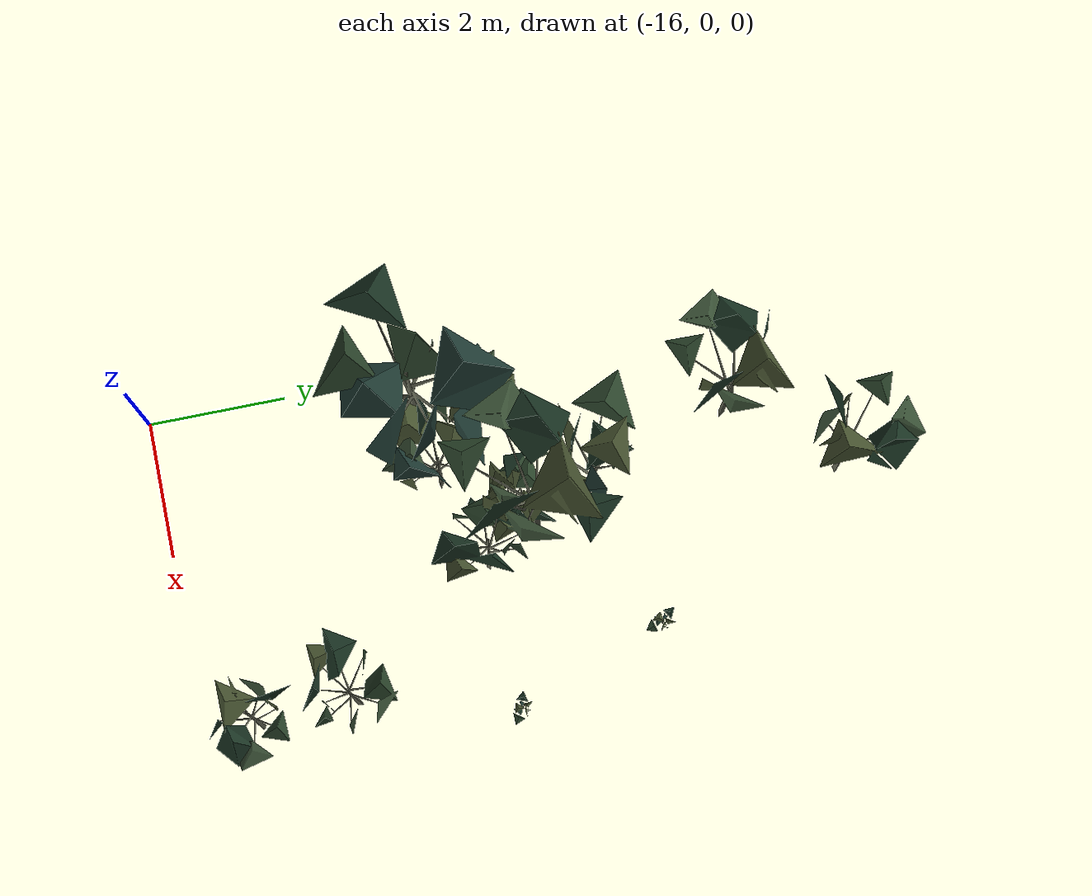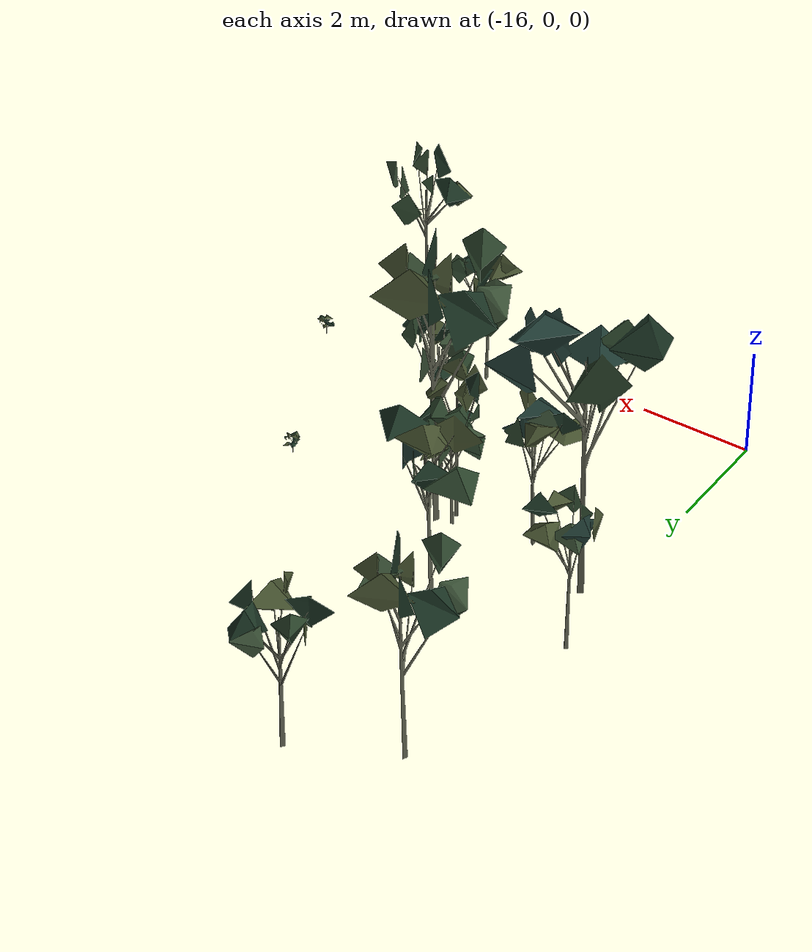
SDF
<sdf version="1.8">
 <model name="blue_mountains">
  <static>true</static>
  <link name="forest_18_20">
   <collision name="tree_75_trunk">
    <pose>-11.33568 0.8718454 1.156128 0 0 3.13535</pose>
    <geometry><cylinder><radius>0.03977862</radius><length>2.115371</length></cylinder></geometry>
   </collision>
   <collision name="plant_75_crown_0">
    <pose>-11.31977 0.8717461 0.09844232 0 0 3.13535</pose>
    <geometry>
     <mesh>
      <uri>model://blue_mountains/meshes/canopy_7_0.dae</uri>
      <scale>0.1591145 0.1591145 0.159047</scale>
     </mesh>
    </geometry>
   </collision>
   <collision name="plant_75_crown_1">
    <pose>-11.31977 0.8717461 0.09844232 0 0 3.13535</pose>
    <geometry>
     <mesh>
      <uri>model://blue_mountains/meshes/canopy_7_1.dae</uri>
      <scale>0.1591145 0.1591145 0.159047</scale>
     </mesh>
    </geometry>
   </collision>
   <collision name="tree_76_trunk">
    <pose>-13.63557 6.041075 1.322435 0 0 0.3849009</pose>
    <geometry><cylinder><radius>0.05684768</radius><length>2.892612</length></cylinder></geometry>
   </collision>
   <collision name="plant_76_crown_0">
    <pose>-13.65664 6.032537 -0.1238706 0 0 0.3849009</pose>
    <geometry>
     <mesh>
      <uri>model://blue_mountains/meshes/canopy_8_0.dae</uri>
      <scale>0.2273907 0.2273907 0.2152363</scale>
     </mesh>
    </geometry>
   </collision>
   <collision name="plant_76_crown_1">
    <pose>-13.65664 6.032537 -0.1238706 0 0 0.3849009</pose>
    <geometry>
     <mesh>
      <uri>model://blue_mountains/meshes/canopy_8_1.dae</uri>
      <scale>0.2273907 0.2273907 0.2152363</scale>
     </mesh>
    </geometry>
   </collision>
   <collision name="tree_149_trunk">
    <pose>-15.33787 4.590311 -0.108752 0 0 -1.71311</pose>
    <geometry><cylinder><radius>0.04133655</radius><length>2.530452</length></cylinder></geometry>
   </collision>
   <collision name="plant_149_crown_0">
    <pose>-15.33553 4.606678 -1.373978 0 0 -1.71311</pose>
    <geometry>
     <mesh>
      <uri>model://blue_mountains/meshes/canopy_1_0.dae</uri>
      <scale>0.1653462 0.1653462 0.1869013</scale>
     </mesh>
    </geometry>
   </collision>
   <collision name="plant_149_crown_1">
    <pose>-15.33553 4.606678 -1.373978 0 0 -1.71311</pose>
    <geometry>
     <mesh>
      <uri>model://blue_mountains/meshes/canopy_1_1.dae</uri>
      <scale>0.1653462 0.1653462 0.1869013</scale>
     </mesh>
    </geometry>
   </collision>
   <collision name="tree_243_trunk">
    <pose>-14.26719 4.022866 1.043729 0 0 0.7645345</pose>
    <geometry><cylinder><radius>0.04388504</radius><length>2.24386</length></cylinder></geometry>
   </collision>
   <collision name="plant_243_crown_0">
    <pose>-14.27986 4.010715 -0.07820058 0 0 0.7645345</pose>
    <geometry>
     <mesh>
      <uri>model://blue_mountains/meshes/canopy_1_0.dae</uri>
      <scale>0.1755401 0.1755401 0.1657333</scale>
     </mesh>
    </geometry>
   </collision>
   <collision name="plant_243_crown_1">
    <pose>-14.27986 4.010715 -0.07820058 0 0 0.7645345</pose>
    <geometry>
     <mesh>
      <uri>model://blue_mountains/meshes/canopy_1_1.dae</uri>
      <scale>0.1755401 0.1755401 0.1657333</scale>
     </mesh>
    </geometry>
   </collision>
   <collision name="tree_263_trunk">
    <pose>-13.38329 4.884163 1.871037 0 0 -0.6052021</pose>
    <geometry><cylinder><radius>0.0360316</radius><length>2.334371</length></cylinder></geometry>
   </collision>
   <collision name="plant_263_crown_0">
    <pose>-13.39514 4.892363 0.7038512 0 0 -0.6052021</pose>
    <geometry>
     <mesh>
      <uri>model://blue_mountains/meshes/canopy_0_0.dae</uri>
      <scale>0.1441264 0.1441264 0.1721586</scale>
     </mesh>
    </geometry>
   </collision>
   <collision name="plant_263_crown_1">
    <pose>-13.39514 4.892363 0.7038512 0 0 -0.6052021</pose>
    <geometry>
     <mesh>
      <uri>model://blue_mountains/meshes/canopy_0_1.dae</uri>
      <scale>0.1441264 0.1441264 0.1721586</scale>
     </mesh>
    </geometry>
   </collision>
   <collision name="tree_272_trunk">
    <pose>-12.7792 4.466906 2.330811 0 0 1.249996</pose>
    <geometry><cylinder><radius>0.03788829</radius><length>2.412556</length></cylinder></geometry>
   </collision>
   <collision name="plant_272_crown_0">
    <pose>-12.78398 4.452524 1.124533 0 0 1.249996</pose>
    <geometry>
     <mesh>
      <uri>model://blue_mountains/meshes/canopy_2_0.dae</uri>
      <scale>0.1515532 0.1515532 0.1775047</scale>
     </mesh>
    </geometry>
   </collision>
   <collision name="plant_272_crown_1">
    <pose>-12.78398 4.452524 1.124533 0 0 1.249996</pose>
    <geometry>
     <mesh>
      <uri>model://blue_mountains/meshes/canopy_2_1.dae</uri>
      <scale>0.1515532 0.1515532 0.1775047</scale>
     </mesh>
    </geometry>
   </collision>
   <collision name="tree_301_trunk">
    <pose>-13.42272 5.085336 1.574898 0 0 1.448694</pose>
    <geometry><cylinder><radius>0.03642906</radius><length>1.798371</length></cylinder></geometry>
   </collision>
   <collision name="plant_301_crown_0">
    <pose>-13.4245 5.070873 0.6757121 0 0 1.448694</pose>
    <geometry>
     <mesh>
      <uri>model://blue_mountains/meshes/canopy_2_0.dae</uri>
      <scale>0.1457162 0.1457162 0.1323158</scale>
     </mesh>
    </geometry>
   </collision>
   <collision name="plant_301_crown_1">
    <pose>-13.4245 5.070873 0.6757121 0 0 1.448694</pose>
    <geometry>
     <mesh>
      <uri>model://blue_mountains/meshes/canopy_2_1.dae</uri>
      <scale>0.1457162 0.1457162 0.1323158</scale>
     </mesh>
    </geometry>
   </collision>
   <collision name="tree_379_trunk">
    <pose>-11.13 2.407401 3.526007 0 0 -0.3767469</pose>
    <geometry><cylinder><radius>0.03762101</radius><length>2.388275</length></cylinder></geometry>
   </collision>
   <collision name="plant_379_crown_0">
    <pose>-11.144 2.412937 2.33187 0 0 -0.3767469</pose>
    <geometry>
     <mesh><uri>model://blue_mountains/meshes/canopy_2_0.dae</uri><scale>0.150484 0.150484 0.1757182</scale></mesh>
    </geometry>
   </collision>
   <collision name="plant_379_crown_1">
    <pose>-11.144 2.412937 2.33187 0 0 -0.3767469</pose>
    <geometry>
     <mesh><uri>model://blue_mountains/meshes/canopy_2_1.dae</uri><scale>0.150484 0.150484 0.1757182</scale></mesh>
    </geometry>
   </collision>
   <collision name="tree_394_trunk">
    <pose>-14.7105 8.342779 0.4646385 0 0 0.3441808</pose>
    <geometry><cylinder><radius>0.05650556</radius><length>3.258937</length></cylinder></geometry>
   </collision>
   <collision name="plant_394_crown_0">
    <pose>-14.73178 8.335153 -1.16483 0 0 0.3441808</pose>
    <geometry>
     <mesh>
      <uri>model://blue_mountains/meshes/canopy_7_0.dae</uri>
      <scale>0.2260223 0.2260223 0.2450275</scale>
     </mesh>
    </geometry>
   </collision>
   <collision name="plant_394_crown_1">
    <pose>-14.73178 8.335153 -1.16483 0 0 0.3441808</pose>
    <geometry>
     <mesh>
      <uri>model://blue_mountains/meshes/canopy_7_1.dae</uri>
      <scale>0.2260223 0.2260223 0.2450275</scale>
     </mesh>
    </geometry>
   </collision>
   <collision name="tree_417_trunk">
    <pose>-13.15352 5.200041 2.825045 0 0 0.2503443</pose>
    <geometry><cylinder><radius>0.06664078</radius><length>4.164946</length></cylinder></geometry>
   </collision>
   <collision name="plant_417_crown_0">
    <pose>-13.17935 5.193438 0.7425723 0 0 0.2503443</pose>
    <geometry>
     <mesh>
      <uri>model://blue_mountains/meshes/canopy_7_0.dae</uri>
      <scale>0.2665631 0.2665631 0.3131471</scale>
     </mesh>
    </geometry>
   </collision>
   <collision name="plant_417_crown_1">
    <pose>-13.17935 5.193438 0.7425723 0 0 0.2503443</pose>
    <geometry>
     <mesh>
      <uri>model://blue_mountains/meshes/canopy_7_1.dae</uri>
      <scale>0.2665631 0.2665631 0.3131471</scale>
     </mesh>
    </geometry>
   </collision>
   <collision name="tree_430_trunk">
    <pose>-13.4532 9.708875 0.7613659 0 0 -1.56741</pose>
    <geometry><cylinder><radius>0.04901569</radius><length>2.539823</length></cylinder></geometry>
   </collision>
   <collision name="plant_430_crown_0">
    <pose>-13.45327 9.728481 -0.5085456 0 0 -1.56741</pose>
    <geometry>
     <mesh><uri>model://blue_mountains/meshes/canopy_7_0.dae</uri><scale>0.1960628 0.1960628 0.19096</scale></mesh>
    </geometry>
   </collision>
   <collision name="plant_430_crown_1">
    <pose>-13.45327 9.728481 -0.5085456 0 0 -1.56741</pose>
    <geometry>
     <mesh><uri>model://blue_mountains/meshes/canopy_7_1.dae</uri><scale>0.1960628 0.1960628 0.19096</scale></mesh>
    </geometry>
   </collision>
   <collision name="tree_448_trunk">
    <pose>-15.12192 3.874882 1.524951 0 0 -0.2266644</pose>
    <geometry><cylinder><radius>0.07146587</radius><length>4.601822</length></cylinder></geometry>
   </collision>
   <collision name="plant_448_crown_0">
    <pose>-15.14978 3.881306 -0.7759604 0 0 -0.2266644</pose>
    <geometry>
     <mesh>
      <uri>model://blue_mountains/meshes/canopy_4_0.dae</uri>
      <scale>0.2858635 0.2858635 0.3429125</scale>
     </mesh>
    </geometry>
   </collision>
   <collision name="plant_448_crown_1">
    <pose>-15.14978 3.881306 -0.7759604 0 0 -0.2266644</pose>
    <geometry>
     <mesh>
      <uri>model://blue_mountains/meshes/canopy_4_1.dae</uri>
      <scale>0.2858635 0.2858635 0.3429125</scale>
     </mesh>
    </geometry>
   </collision>
   <collision name="plant_807_crown_0">
    <pose>-10.60254 4.496918 2.931967 0 0 -2.811538</pose>
    <geometry>
     <mesh>
      <uri>model://blue_mountains/meshes/canopy_12_0.dae</uri>
      <scale>0.04139712 0.04139712 0.02690813</scale>
     </mesh>
    </geometry>
   </collision>
   <collision name="plant_807_crown_1">
    <pose>-10.60254 4.496918 2.931967 0 0 -2.811538</pose>
    <geometry>
     <mesh>
      <uri>model://blue_mountains/meshes/canopy_12_1.dae</uri>
      <scale>0.04139712 0.04139712 0.02690813</scale>
     </mesh>
    </geometry>
   </collision>
   <collision name="plant_817_crown_0">
    <pose>-11.42921 6.567402 2.203921 0 0 2.802582</pose>
    <geometry>
     <mesh>
      <uri>model://blue_mountains/meshes/canopy_12_0.dae</uri>
      <scale>0.04530393 0.04530393 0.02944756</scale>
     </mesh>
    </geometry>
   </collision>
   <collision name="plant_817_crown_1">
    <pose>-11.42921 6.567402 2.203921 0 0 2.802582</pose>
    <geometry>
     <mesh>
      <uri>model://blue_mountains/meshes/canopy_12_1.dae</uri>
      <scale>0.04530393 0.04530393 0.02944756</scale>
     </mesh>
    </geometry>
   </collision>
   <visual name="forest_visual">
    <geometry><mesh><uri>model://blue_mountains/meshes/forest_18_20.dae</uri></mesh></geometry>
    <cast_shadows>false</cast_shadows>
   </visual>
  </link>
 </model>
</sdf>
